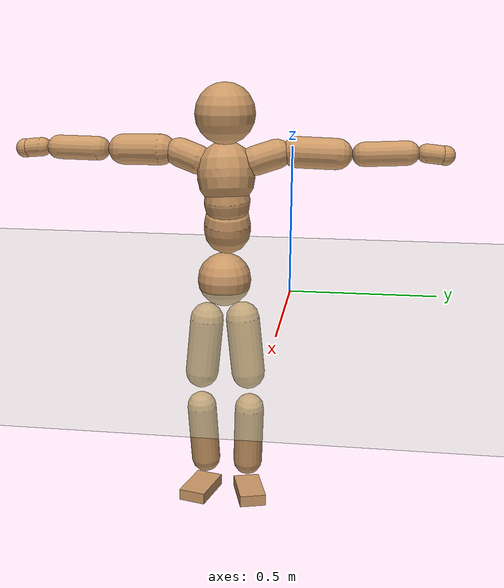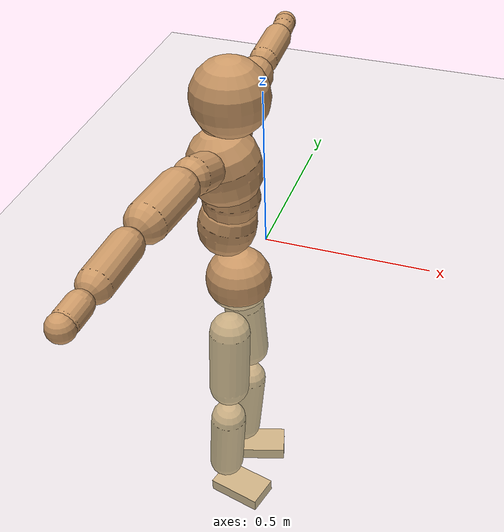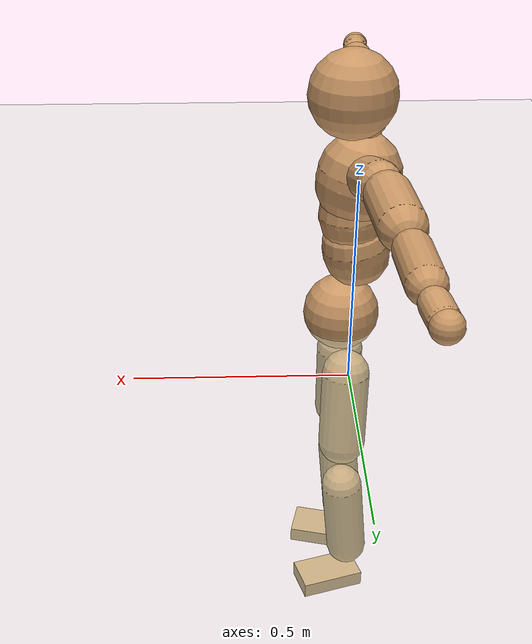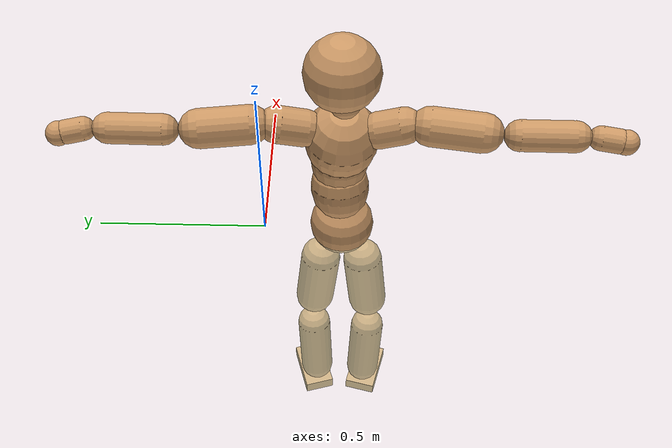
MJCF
<mujoco model="humanoid">
  <compiler coordinate="local"/>
  <default>
    <joint damping="0.0" armature="0.01" stiffness="0.0" limited="true"/>
    <geom conaffinity="1" condim="3" contype="7" margin="0.001" rgba="0.8 0.6 .4 1"/>
  </default>
  <asset>
    <texture type="skybox" builtin="gradient" rgb1=".4 .5 .6" rgb2="0 0 0" width="100" height="100"/>
    <texture builtin="flat" height="1278" mark="cross" markrgb="1 1 1" name="texgeom" random="0.01" rgb1="0.8 0.6 0.4" rgb2="0.8 0.6 0.4" type="cube" width="127"/>
    <texture builtin="checker" height="100" name="texplane" rgb1="0 0 0" rgb2="0.8 0.8 0.8" type="2d" width="100"/>
    <material name="MatPlane" reflectance="0.5" shininess="1" specular="1" texrepeat="60 60" texture="texplane"/>
    <material name="geom" texture="texgeom" texuniform="true"/>
  </asset>
  <worldbody>
    <light cutoff="100" diffuse="1 1 1" dir="-0 0 -1.3" directional="true" exponent="1" pos="0 0 1.3" specular=".1 .1 .1"/>
    <geom conaffinity="1" condim="3" name="floor" pos="0 0 0" rgba="0.8 0.9 0.8 1" size="100 100 .2" type="plane" material="MatPlane"/>
    <body name="Pelvis" pos="-0.0029 -0.2315 0.0322">
      <freejoint name="Pelvis"/>
      <geom type="sphere" contype="1" conaffinity="1" density="500" size="0.0939" pos="0.0000 0.0000 0.0000" name="Pelvis"/>
      <body name="L_Hip" pos="-0.0139 0.0562 -0.0771">
        <joint name="L_Hip_x" type="hinge" pos="0 0 0" axis="1 0 0" stiffness="800" damping="80" armature="0.02" range="-180.0000 180.0000"/>
        <joint name="L_Hip_y" type="hinge" pos="0 0 0" axis="0 1 0" stiffness="800" damping="80" armature="0.02" range="-180.0000 180.0000"/>
        <joint name="L_Hip_z" type="hinge" pos="0 0 0" axis="0 0 1" stiffness="800" damping="80" armature="0.02" range="-180.0000 180.0000"/>
        <geom type="capsule" contype="1" conaffinity="1" density="500" fromto="0.0014 0.0070 -0.0677 0.0055 0.0281 -0.2706" size="0.0596" name="L_Hip"/>
        <body name="L_Knee" pos="0.0069 0.0351 -0.3383">
          <joint name="L_Knee_x" type="hinge" pos="0 0 0" axis="1 0 0" stiffness="800" damping="80" armature="0.02" range="-180.0000 180.0000"/>
          <joint name="L_Knee_y" type="hinge" pos="0 0 0" axis="0 1 0" stiffness="800" damping="80" armature="0.02" range="-180.0000 180.0000"/>
          <joint name="L_Knee_z" type="hinge" pos="0 0 0" axis="0 0 1" stiffness="800" damping="80" armature="0.02" range="-180.0000 180.0000"/>
          <geom type="capsule" contype="1" conaffinity="1" density="500" fromto="-0.0072 -0.0028 -0.0741 -0.0287 -0.0113 -0.2962" size="0.0527" name="L_Knee"/>
          <body name="L_Ankle" pos="-0.0359 -0.0141 -0.3703">
            <joint name="L_Ankle_x" type="hinge" pos="0 0 0" axis="1 0 0" stiffness="800" damping="80" armature="0.02" range="-180.0000 180.0000"/>
            <joint name="L_Ankle_y" type="hinge" pos="0 0 0" axis="0 1 0" stiffness="800" damping="80" armature="0.02" range="-180.0000 180.0000"/>
            <joint name="L_Ankle_z" type="hinge" pos="0 0 0" axis="0 0 1" stiffness="800" damping="80" armature="0.02" range="-180.0000 180.0000"/>
            <geom type="box" contype="1" conaffinity="1" density="500" pos="0.0563 0.0165 -0.0265" size="0.0826 0.0472 0.0208" quat="0.9898 0.0000 0.0000 0.1423" name="L_Ankle"/>
            <body name="L_Toe" pos="0.1125 0.033 -0.0529">
              <joint name="L_Toe_x" type="hinge" pos="0 0 0" axis="1 0 0" stiffness="500" damping="50" armature="0.02" range="-180.0000 180.0000"/>
              <joint name="L_Toe_y" type="hinge" pos="0 0 0" axis="0 1 0" stiffness="500" damping="50" armature="0.02" range="-180.0000 180.0000"/>
              <joint name="L_Toe_z" type="hinge" pos="0 0 0" axis="0 0 1" stiffness="500" damping="50" armature="0.02" range="-180.0000 180.0000"/>
              <geom type="box" contype="1" conaffinity="1" density="500" pos="0.0000 0.0000 0.0253" size="0.001 0.0024 0.001" quat="0.9890 0.0000 0.0000 0.1479" name="L_Toe"/>
            </body>
          </body>
        </body>
      </body>
      <body name="R_Hip" pos="-0.0085 -0.0585 -0.0854">
        <joint name="R_Hip_x" type="hinge" pos="0 0 0" axis="1 0 0" stiffness="800" damping="80" armature="0.02" range="-180.0000 180.0000"/>
        <joint name="R_Hip_y" type="hinge" pos="0 0 0" axis="0 1 0" stiffness="800" damping="80" armature="0.02" range="-180.0000 180.0000"/>
        <joint name="R_Hip_z" type="hinge" pos="0 0 0" axis="0 0 1" stiffness="800" damping="80" armature="0.02" range="-180.0000 180.0000"/>
        <geom type="capsule" contype="1" conaffinity="1" density="500" fromto="-0.0009 -0.0068 -0.0672 -0.0036 -0.0272 -0.2689" size="0.0592" name="R_Hip"/>
        <body name="R_Knee" pos="-0.0044 -0.034 -0.3361">
          <joint name="R_Knee_x" type="hinge" pos="0 0 0" axis="1 0 0" stiffness="800" damping="80" armature="0.02" range="-180.0000 180.0000"/>
          <joint name="R_Knee_y" type="hinge" pos="0 0 0" axis="0 1 0" stiffness="800" damping="80" armature="0.02" range="-180.0000 180.0000"/>
          <joint name="R_Knee_z" type="hinge" pos="0 0 0" axis="0 0 1" stiffness="800" damping="80" armature="0.02" range="-180.0000 180.0000"/>
          <geom type="capsule" contype="1" conaffinity="1" density="500" fromto="-0.0066 0.0034 -0.0726 -0.0265 0.0136 -0.2905" size="0.053" name="R_Knee"/>
          <body name="R_Ankle" pos="-0.0331 0.017 -0.3631">
            <joint name="R_Ankle_x" type="hinge" pos="0 0 0" axis="1 0 0" stiffness="800" damping="80" armature="0.02" range="-180.0000 180.0000"/>
            <joint name="R_Ankle_y" type="hinge" pos="0 0 0" axis="0 1 0" stiffness="800" damping="80" armature="0.02" range="-180.0000 180.0000"/>
            <joint name="R_Ankle_z" type="hinge" pos="0 0 0" axis="0 0 1" stiffness="800" damping="80" armature="0.02" range="-180.0000 180.0000"/>
            <geom type="box" contype="1" conaffinity="1" density="500" pos="0.0596 -0.0149 -0.0271" size="0.0832 0.0491 0.0204" quat="0.9925 0.0000 0.0000 -0.1221" name="R_Ankle"/>
            <body name="R_Toe" pos="0.1193 -0.0298 -0.0543">
              <joint name="R_Toe_x" type="hinge" pos="0 0 0" axis="1 0 0" stiffness="500" damping="50" armature="0.02" range="-180.0000 180.0000"/>
              <joint name="R_Toe_y" type="hinge" pos="0 0 0" axis="0 1 0" stiffness="500" damping="50" armature="0.02" range="-180.0000 180.0000"/>
              <joint name="R_Toe_z" type="hinge" pos="0 0 0" axis="0 0 1" stiffness="500" damping="50" armature="0.02" range="-180.0000 180.0000"/>
              <geom type="box" contype="1" conaffinity="1" density="500" pos="0.0000 0.0000 0.0275" size="0.0011 0.0025 0.001" quat="0.9937 0.0000 0.0000 -0.1124" name="R_Toe"/>
            </body>
          </body>
        </body>
      </body>
      <body name="Torso" pos="-0.0394 0.0041 0.1178">
        <joint name="Torso_x" type="hinge" pos="0 0 0" axis="1 0 0" stiffness="1000" damping="100" armature="0.02" range="-180.0000 180.0000"/>
        <joint name="Torso_y" type="hinge" pos="0 0 0" axis="0 1 0" stiffness="1000" damping="100" armature="0.02" range="-180.0000 180.0000"/>
        <joint name="Torso_z" type="hinge" pos="0 0 0" axis="0 0 1" stiffness="1000" damping="100" armature="0.02" range="-180.0000 180.0000"/>
        <geom type="capsule" contype="1" conaffinity="1" density="500" fromto="0.0139 0.0028 0.0773 0.0093 0.0019 0.0516" size="0.0814" name="Torso"/>
        <body name="Spine" pos="0.0232 0.0047 0.1289">
          <joint name="Spine_x" type="hinge" pos="0 0 0" axis="1 0 0" stiffness="1000" damping="100" armature="0.02" range="-180.0000 180.0000"/>
          <joint name="Spine_y" type="hinge" pos="0 0 0" axis="0 1 0" stiffness="1000" damping="100" armature="0.02" range="-180.0000 180.0000"/>
          <joint name="Spine_z" type="hinge" pos="0 0 0" axis="0 0 1" stiffness="1000" damping="100" armature="0.02" range="-180.0000 180.0000"/>
          <geom type="capsule" contype="1" conaffinity="1" density="500" fromto="0.0024 -0.0010 0.0312 0.0016 -0.0006 0.0208" size="0.0799" name="Spine"/>
          <body name="Chest" pos="0.004 -0.0016 0.052">
            <joint name="Chest_x" type="hinge" pos="0 0 0" axis="1 0 0" stiffness="1000" damping="100" armature="0.02" range="-180.0000 180.0000"/>
            <joint name="Chest_y" type="hinge" pos="0 0 0" axis="0 1 0" stiffness="1000" damping="100" armature="0.02" range="-180.0000 180.0000"/>
            <joint name="Chest_z" type="hinge" pos="0 0 0" axis="0 0 1" stiffness="1000" damping="100" armature="0.02" range="-180.0000 180.0000"/>
            <geom type="capsule" contype="1" conaffinity="1" density="500" fromto="-0.0161 -0.0050 0.0809 -0.0108 -0.0033 0.0539" size="0.0996" name="Chest"/>
            <body name="Neck" pos="-0.0369 -0.0135 0.1944">
              <joint name="Neck_x" type="hinge" pos="0 0 0" axis="1 0 0" stiffness="500" damping="50" armature="0.02" range="-180.0000 180.0000"/>
              <joint name="Neck_y" type="hinge" pos="0 0 0" axis="0 1 0" stiffness="500" damping="50" armature="0.02" range="-180.0000 180.0000"/>
              <joint name="Neck_z" type="hinge" pos="0 0 0" axis="0 0 1" stiffness="500" damping="50" armature="0.02" range="-180.0000 180.0000"/>
              <geom type="capsule" contype="1" conaffinity="1" density="500" fromto="0.0092 0.0019 0.0159 0.0369 0.0078 0.0636" size="0.0445" name="Neck"/>
              <body name="Head" pos="0.0461 0.0097 0.0796">
                <joint name="Head_x" type="hinge" pos="0 0 0" axis="1 0 0" stiffness="500" damping="50" armature="0.02" range="-180.0000 180.0000"/>
                <joint name="Head_y" type="hinge" pos="0 0 0" axis="0 1 0" stiffness="500" damping="50" armature="0.02" range="-180.0000 180.0000"/>
                <joint name="Head_z" type="hinge" pos="0 0 0" axis="0 0 1" stiffness="500" damping="50" armature="0.02" range="-180.0000 180.0000"/>
                <geom type="sphere" contype="1" conaffinity="1" density="500" size="0.1035" pos="0.0000 0.0000 0.0000" name="Head"/>
              </body>
            </body>
            <body name="L_Thorax" pos="-0.0196 0.0686 0.1054">
              <joint name="L_Thorax_x" type="hinge" pos="0 0 0" axis="1 0 0" stiffness="500" damping="50" armature="0.02" range="-180.0000 180.0000"/>
              <joint name="L_Thorax_y" type="hinge" pos="0 0 0" axis="0 1 0" stiffness="500" damping="50" armature="0.02" range="-180.0000 180.0000"/>
              <joint name="L_Thorax_z" type="hinge" pos="0 0 0" axis="0 0 1" stiffness="500" damping="50" armature="0.02" range="-180.0000 180.0000"/>
              <geom type="capsule" contype="1" conaffinity="1" density="500" fromto="-0.0043 0.0243 0.0078 -0.0170 0.0973 0.0310" size="0.0508" name="L_Thorax"/>
              <body name="L_Shoulder" pos="-0.0213 0.1216 0.0388">
                <joint name="L_Shoulder_x" type="hinge" pos="0 0 0" axis="1 0 0" stiffness="500" damping="50" armature="0.02" range="-720.0000 720.0000"/>
                <joint name="L_Shoulder_y" type="hinge" pos="0 0 0" axis="0 1 0" stiffness="500" damping="50" armature="0.02" range="-720.0000 720.0000"/>
                <joint name="L_Shoulder_z" type="hinge" pos="0 0 0" axis="0 0 1" stiffness="500" damping="50" armature="0.02" range="-720.0000 720.0000"/>
                <geom type="capsule" contype="1" conaffinity="1" density="500" fromto="-0.0043 0.0448 -0.0019 -0.0173 0.1791 -0.0075" size="0.0534" name="L_Shoulder"/>
                <body name="L_Elbow" pos="-0.0216 0.2238 -0.0094">
                  <joint name="L_Elbow_x" type="hinge" pos="0 0 0" axis="1 0 0" stiffness="500" damping="50" armature="0.02" range="-720.0000 720.0000"/>
                  <joint name="L_Elbow_y" type="hinge" pos="0 0 0" axis="0 1 0" stiffness="500" damping="50" armature="0.02" range="-720.0000 720.0000"/>
                  <joint name="L_Elbow_z" type="hinge" pos="0 0 0" axis="0 0 1" stiffness="500" damping="50" armature="0.02" range="-720.0000 720.0000"/>
                  <geom type="capsule" contype="1" conaffinity="1" density="500" fromto="-0.0014 0.0476 0.0021 -0.0058 0.1905 0.0082" size="0.0418" name="L_Elbow"/>
                  <body name="L_Wrist" pos="-0.0072 0.2381 0.0103">
                    <joint name="L_Wrist_x" type="hinge" pos="0 0 0" axis="1 0 0" stiffness="300" damping="30" armature="0.02" range="-180.0000 180.0000"/>
                    <joint name="L_Wrist_y" type="hinge" pos="0 0 0" axis="0 1 0" stiffness="300" damping="30" armature="0.02" range="-180.0000 180.0000"/>
                    <joint name="L_Wrist_z" type="hinge" pos="0 0 0" axis="0 0 1" stiffness="300" damping="30" armature="0.02" range="-180.0000 180.0000"/>
                    <geom type="capsule" contype="1" conaffinity="1" density="500" fromto="-0.0028 0.0161 -0.0020 -0.0113 0.0644 -0.0080" size="0.0322" name="L_Wrist"/>
                    <body name="L_Hand" pos="-0.0141 0.0805 -0.01">
                      <joint name="L_Hand_x" type="hinge" pos="0 0 0" axis="1 0 0" stiffness="300" damping="30" armature="0.02" range="-180.0000 180.0000"/>
                      <joint name="L_Hand_y" type="hinge" pos="0 0 0" axis="0 1 0" stiffness="300" damping="30" armature="0.02" range="-180.0000 180.0000"/>
                      <joint name="L_Hand_z" type="hinge" pos="0 0 0" axis="0 0 1" stiffness="300" damping="30" armature="0.02" range="-180.0000 180.0000"/>
                      <geom type="sphere" contype="1" conaffinity="1" density="500" size="0.0332" pos="0.0000 0.0000 0.0000" name="L_Hand"/>
                    </body>
                  </body>
                </body>
              </body>
            </body>
            <body name="R_Thorax" pos="-0.0243 -0.0801 0.1045">
              <joint name="R_Thorax_x" type="hinge" pos="0 0 0" axis="1 0 0" stiffness="500" damping="50" armature="0.02" range="-180.0000 180.0000"/>
              <joint name="R_Thorax_y" type="hinge" pos="0 0 0" axis="0 1 0" stiffness="500" damping="50" armature="0.02" range="-180.0000 180.0000"/>
              <joint name="R_Thorax_z" type="hinge" pos="0 0 0" axis="0 0 1" stiffness="500" damping="50" armature="0.02" range="-180.0000 180.0000"/>
              <geom type="capsule" contype="1" conaffinity="1" density="500" fromto="-0.0022 -0.0220 0.0079 -0.0087 -0.0882 0.0317" size="0.0505" name="R_Thorax"/>
              <body name="R_Shoulder" pos="-0.0108 -0.1102 0.0396">
                <joint name="R_Shoulder_x" type="hinge" pos="0 0 0" axis="1 0 0" stiffness="500" damping="50" armature="0.02" range="-720.0000 720.0000"/>
                <joint name="R_Shoulder_y" type="hinge" pos="0 0 0" axis="0 1 0" stiffness="500" damping="50" armature="0.02" range="-720.0000 720.0000"/>
                <joint name="R_Shoulder_z" type="hinge" pos="0 0 0" axis="0 0 1" stiffness="500" damping="50" armature="0.02" range="-720.0000 720.0000"/>
                <geom type="capsule" contype="1" conaffinity="1" density="500" fromto="-0.0060 -0.0457 -0.0010 -0.0242 -0.1830 -0.0040" size="0.0536" name="R_Shoulder"/>
                <body name="R_Elbow" pos="-0.0302 -0.2287 -0.005">
                  <joint name="R_Elbow_x" type="hinge" pos="0 0 0" axis="1 0 0" stiffness="500" damping="50" armature="0.02" range="-720.0000 720.0000"/>
                  <joint name="R_Elbow_y" type="hinge" pos="0 0 0" axis="0 1 0" stiffness="500" damping="50" armature="0.02" range="-720.0000 720.0000"/>
                  <joint name="R_Elbow_z" type="hinge" pos="0 0 0" axis="0 0 1" stiffness="500" damping="50" armature="0.02" range="-720.0000 720.0000"/>
                  <geom type="capsule" contype="1" conaffinity="1" density="500" fromto="-0.0010 -0.0477 0.0007 -0.0042 -0.1909 0.0029" size="0.0423" name="R_Elbow"/>
                  <body name="R_Wrist" pos="-0.0052 -0.2386 0.0037">
                    <joint name="R_Wrist_x" type="hinge" pos="0 0 0" axis="1 0 0" stiffness="300" damping="30" armature="0.02" range="-180.0000 180.0000"/>
                    <joint name="R_Wrist_y" type="hinge" pos="0 0 0" axis="0 1 0" stiffness="300" damping="30" armature="0.02" range="-180.0000 180.0000"/>
                    <joint name="R_Wrist_z" type="hinge" pos="0 0 0" axis="0 0 1" stiffness="300" damping="30" armature="0.02" range="-180.0000 180.0000"/>
                    <geom type="capsule" contype="1" conaffinity="1" density="500" fromto="-0.0018 -0.0165 -0.0016 -0.0073 -0.0659 -0.0065" size="0.0329" name="R_Wrist"/>
                    <body name="R_Hand" pos="-0.0091 -0.0823 -0.0082">
                      <joint name="R_Hand_x" type="hinge" pos="0 0 0" axis="1 0 0" stiffness="300" damping="30" armature="0.02" range="-180.0000 180.0000"/>
                      <joint name="R_Hand_y" type="hinge" pos="0 0 0" axis="0 1 0" stiffness="300" damping="30" armature="0.02" range="-180.0000 180.0000"/>
                      <joint name="R_Hand_z" type="hinge" pos="0 0 0" axis="0 0 1" stiffness="300" damping="30" armature="0.02" range="-180.0000 180.0000"/>
                      <geom type="sphere" contype="1" conaffinity="1" density="500" size="0.0337" pos="0.0000 0.0000 0.0000" name="R_Hand"/>
                    </body>
                  </body>
                </body>
              </body>
            </body>
          </body>
        </body>
      </body>
    </body>
  </worldbody>
  <actuator>
    <motor name="L_Hip_x" joint="L_Hip_x" gear="500"/>
    <motor name="L_Hip_y" joint="L_Hip_y" gear="500"/>
    <motor name="L_Hip_z" joint="L_Hip_z" gear="500"/>
    <motor name="L_Knee_x" joint="L_Knee_x" gear="500"/>
    <motor name="L_Knee_y" joint="L_Knee_y" gear="500"/>
    <motor name="L_Knee_z" joint="L_Knee_z" gear="500"/>
    <motor name="L_Ankle_x" joint="L_Ankle_x" gear="500"/>
    <motor name="L_Ankle_y" joint="L_Ankle_y" gear="500"/>
    <motor name="L_Ankle_z" joint="L_Ankle_z" gear="500"/>
    <motor name="L_Toe_x" joint="L_Toe_x" gear="500"/>
    <motor name="L_Toe_y" joint="L_Toe_y" gear="500"/>
    <motor name="L_Toe_z" joint="L_Toe_z" gear="500"/>
    <motor name="R_Hip_x" joint="R_Hip_x" gear="500"/>
    <motor name="R_Hip_y" joint="R_Hip_y" gear="500"/>
    <motor name="R_Hip_z" joint="R_Hip_z" gear="500"/>
    <motor name="R_Knee_x" joint="R_Knee_x" gear="500"/>
    <motor name="R_Knee_y" joint="R_Knee_y" gear="500"/>
    <motor name="R_Knee_z" joint="R_Knee_z" gear="500"/>
    <motor name="R_Ankle_x" joint="R_Ankle_x" gear="500"/>
    <motor name="R_Ankle_y" joint="R_Ankle_y" gear="500"/>
    <motor name="R_Ankle_z" joint="R_Ankle_z" gear="500"/>
    <motor name="R_Toe_x" joint="R_Toe_x" gear="500"/>
    <motor name="R_Toe_y" joint="R_Toe_y" gear="500"/>
    <motor name="R_Toe_z" joint="R_Toe_z" gear="500"/>
    <motor name="Torso_x" joint="Torso_x" gear="500"/>
    <motor name="Torso_y" joint="Torso_y" gear="500"/>
    <motor name="Torso_z" joint="Torso_z" gear="500"/>
    <motor name="Spine_x" joint="Spine_x" gear="500"/>
    <motor name="Spine_y" joint="Spine_y" gear="500"/>
    <motor name="Spine_z" joint="Spine_z" gear="500"/>
    <motor name="Chest_x" joint="Chest_x" gear="500"/>
    <motor name="Chest_y" joint="Chest_y" gear="500"/>
    <motor name="Chest_z" joint="Chest_z" gear="500"/>
    <motor name="Neck_x" joint="Neck_x" gear="500"/>
    <motor name="Neck_y" joint="Neck_y" gear="500"/>
    <motor name="Neck_z" joint="Neck_z" gear="500"/>
    <motor name="Head_x" joint="Head_x" gear="500"/>
    <motor name="Head_y" joint="Head_y" gear="500"/>
    <motor name="Head_z" joint="Head_z" gear="500"/>
    <motor name="L_Thorax_x" joint="L_Thorax_x" gear="500"/>
    <motor name="L_Thorax_y" joint="L_Thorax_y" gear="500"/>
    <motor name="L_Thorax_z" joint="L_Thorax_z" gear="500"/>
    <motor name="L_Shoulder_x" joint="L_Shoulder_x" gear="500"/>
    <motor name="L_Shoulder_y" joint="L_Shoulder_y" gear="500"/>
    <motor name="L_Shoulder_z" joint="L_Shoulder_z" gear="500"/>
    <motor name="L_Elbow_x" joint="L_Elbow_x" gear="500"/>
    <motor name="L_Elbow_y" joint="L_Elbow_y" gear="500"/>
    <motor name="L_Elbow_z" joint="L_Elbow_z" gear="500"/>
    <motor name="L_Wrist_x" joint="L_Wrist_x" gear="500"/>
    <motor name="L_Wrist_y" joint="L_Wrist_y" gear="500"/>
    <motor name="L_Wrist_z" joint="L_Wrist_z" gear="500"/>
    <motor name="L_Hand_x" joint="L_Hand_x" gear="500"/>
    <motor name="L_Hand_y" joint="L_Hand_y" gear="500"/>
    <motor name="L_Hand_z" joint="L_Hand_z" gear="500"/>
    <motor name="R_Thorax_x" joint="R_Thorax_x" gear="500"/>
    <motor name="R_Thorax_y" joint="R_Thorax_y" gear="500"/>
    <motor name="R_Thorax_z" joint="R_Thorax_z" gear="500"/>
    <motor name="R_Shoulder_x" joint="R_Shoulder_x" gear="500"/>
    <motor name="R_Shoulder_y" joint="R_Shoulder_y" gear="500"/>
    <motor name="R_Shoulder_z" joint="R_Shoulder_z" gear="500"/>
    <motor name="R_Elbow_x" joint="R_Elbow_x" gear="500"/>
    <motor name="R_Elbow_y" joint="R_Elbow_y" gear="500"/>
    <motor name="R_Elbow_z" joint="R_Elbow_z" gear="500"/>
    <motor name="R_Wrist_x" joint="R_Wrist_x" gear="500"/>
    <motor name="R_Wrist_y" joint="R_Wrist_y" gear="500"/>
    <motor name="R_Wrist_z" joint="R_Wrist_z" gear="500"/>
    <motor name="R_Hand_x" joint="R_Hand_x" gear="500"/>
    <motor name="R_Hand_y" joint="R_Hand_y" gear="500"/>
    <motor name="R_Hand_z" joint="R_Hand_z" gear="500"/>
  </actuator>
  <contact>
    <exclude body1="Torso" body2="Chest"/>
    <exclude body1="Head" body2="Chest"/>
    <exclude body1="R_Knee" body2="R_Toe"/>
    <exclude body1="R_Knee" body2="L_Ankle"/>
    <exclude body1="R_Knee" body2="L_Toe"/>
    <exclude body1="L_Knee" body2="L_Toe"/>
    <exclude body1="L_Knee" body2="R_Ankle"/>
    <exclude body1="L_Knee" body2="R_Toe"/>
    <exclude body1="L_Shoulder" body2="Chest"/>
    <exclude body1="R_Shoulder" body2="Chest"/>
  </contact>
  <sensor/>
  <size njmax="700" nconmax="700"/>
</mujoco>
